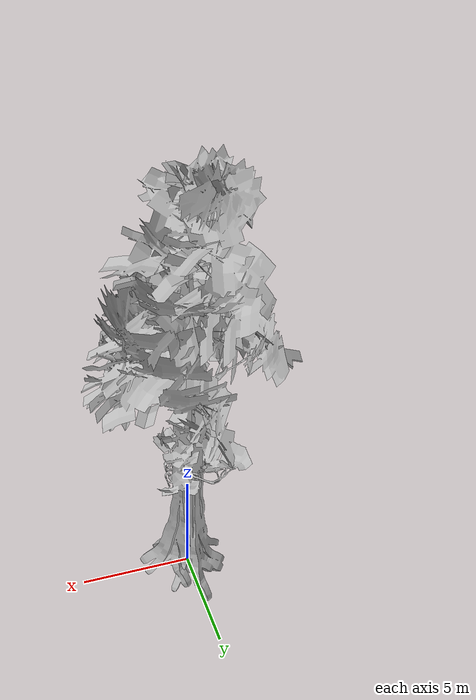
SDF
<?xml version="1.0" ?>
<sdf version="1.5">
  <model name="Tree 4">
     <static>true</static>
    <pose frame=''>0 0 0 1.57079 0 0</pose>
    <link name="link">
      <pose frame=''>0 0 0 0 0 0</pose>
      <collision name="collision">
        <geometry>
          <mesh>
            <scale>5 5 5</scale>
            <uri>model://tree_4/meshes/tree_4.obj</uri>
          </mesh>
        </geometry>
      </collision>
      <visual name="visual">
        <geometry>
          <mesh>

            <scale>5 5 5</scale>
            <uri>model://tree_4/meshes/tree_4.obj</uri>
          </mesh>
        </geometry>
      </visual>
    </link>
  </model>
</sdf>
